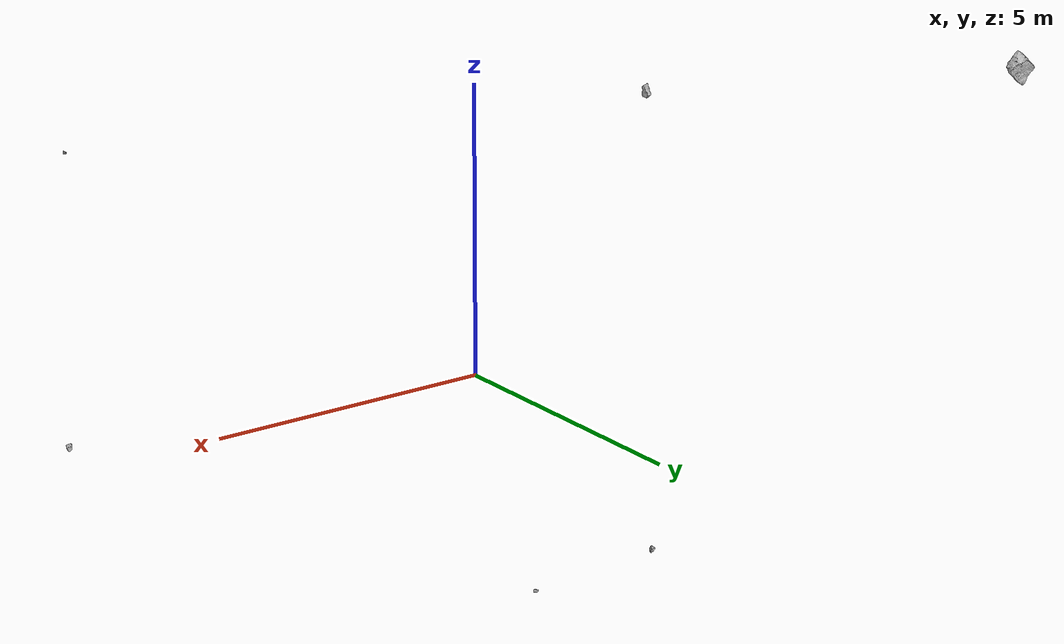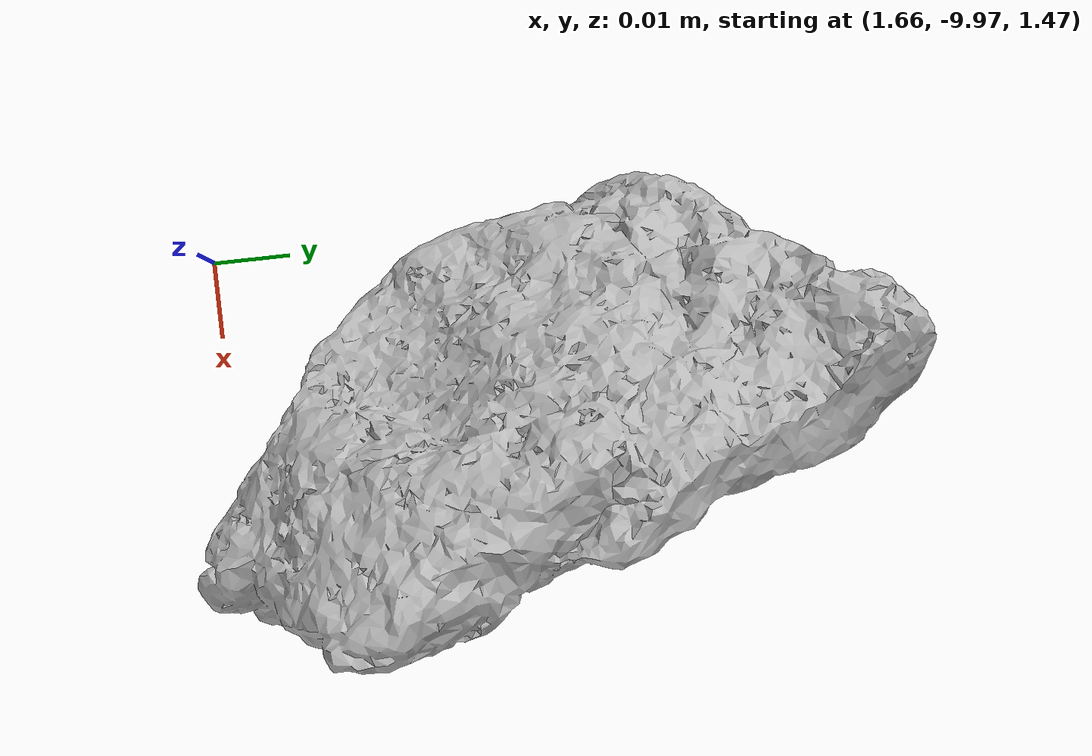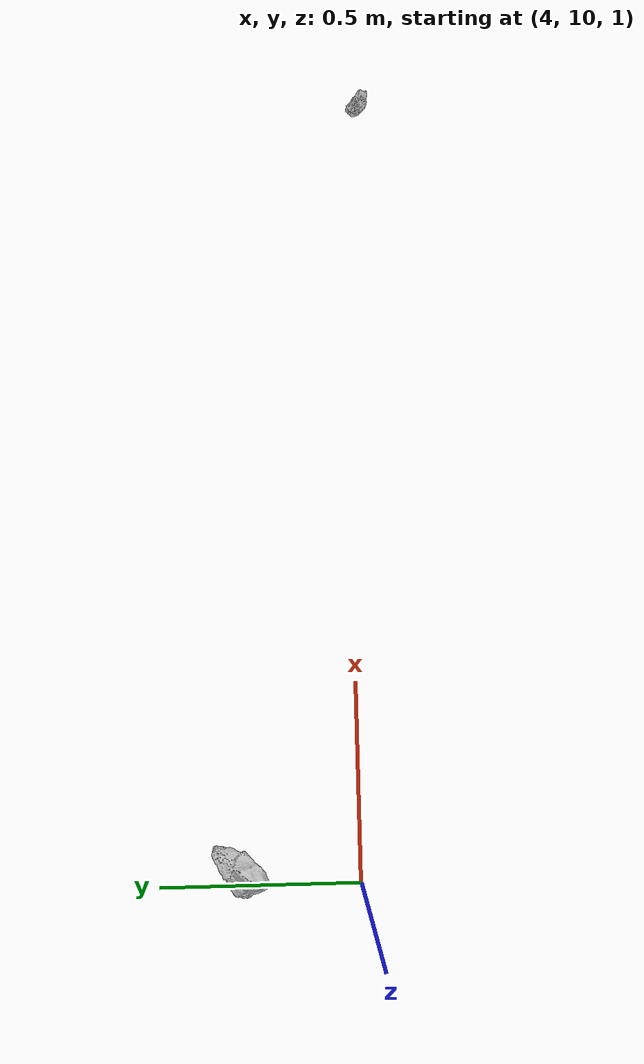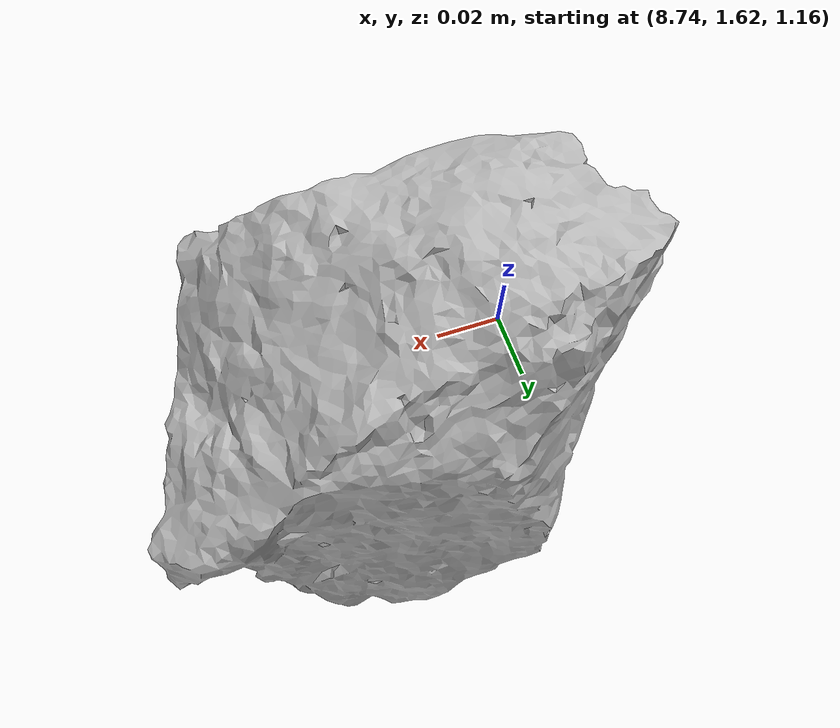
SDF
<sdf version="1.7">
 <world name="marsyard">
  <gravity>0 0 -9.81</gravity>
  <physics name="dart_physics" type="ignored">
   <max_step_size>0.003</max_step_size>
   <real_time_update_rate>333</real_time_update_rate>
   <real_time_factor>1.0</real_time_factor>
  </physics>
  <plugin filename="ignition-gazebo-physics-system" name="ignition::gazebo::systems::Physics"/>
  <plugin filename="ignition-gazebo-user-commands-system" name="ignition::gazebo::systems::UserCommands"/>
  <plugin filename="ignition-gazebo-scene-broadcaster-system" name="ignition::gazebo::systems::SceneBroadcaster"/>
  <plugin filename="ignition-gazebo-contact-system" name="ignition::gazebo::systems::Contact"/>
  <plugin filename="ignition-gazebo-sensors-system" name="ignition::gazebo::systems::Sensors">
   <render_engine>ogre2</render_engine>
  </plugin>
  <plugin filename="ignition-gazebo-imu-system" name="ignition::gazebo::systems::Imu"/>
  <plugin filename="ignition-gazebo-magnetometer-system" name="ignition::gazebo::systems::Magnetometer"/>
  <scene>
   <ambient>0.95 0.95 0.95 1</ambient>
   <background>0.70 0.70 0.70 1</background>
   <shadows>false</shadows>
  </scene>
  <light type="directional" name="sun">
   <cast_shadows>false</cast_shadows>
   <pose>0 0 30 0 0 0</pose>
   <diffuse>1 1 1 1</diffuse>
   <specular>0.15 0.15 0.15 1</specular>
   <direction>-0.35 0.1 -0.93</direction>
  </light>
  <model name="Rock_2">
   <static>true</static>
   <pose>1.6837 -9.9312 1.5080 0.0000 0.0000 1.8941</pose>
   <link name="link">
    <visual name="visual">
     <geometry><mesh><uri>package://rock_generator/rocks_ws/rock_5/meshes/rock_5.obj</uri></mesh></geometry>
    </visual>
   </link>
  </model>
  <model name="Rock_3">
   <static>true</static>
   <pose>-10.0103 -8.8852 0.7231 0.0000 0.0000 0.9096</pose>
   <link name="link">
    <visual name="visual">
     <geometry><mesh><uri>package://rock_generator/rocks_ws/rock_4/meshes/rock_4.obj</uri></mesh></geometry>
    </visual>
    <collision name="collision">
     <geometry><mesh><uri>package://rock_generator/rocks_ws/rock_4/meshes/rock_4.obj</uri></mesh></geometry>
    </collision>
   </link>
  </model>
  <model name="Rock_4">
   <static>true</static>
   <pose>4.1256 10.2969 1.2535 0.0000 0.0000 0.7761</pose>
   <link name="link">
    <visual name="visual">
     <geometry><mesh><uri>package://rock_generator/rocks_ws/rock_6/meshes/rock_6.obj</uri></mesh></geometry>
    </visual>
   </link>
  </model>
  <model name="Rock_5">
   <static>true</static>
   <pose>8.7861 1.6664 1.2309 0.0000 0.0000 3.0383</pose>
   <link name="link">
    <visual name="visual">
     <geometry><mesh><uri>package://rock_generator/rocks_ws/rock_9/meshes/rock_9.obj</uri></mesh></geometry>
    </visual>
   </link>
  </model>
  <model name="Rock_6">
   <static>true</static>
   <pose>-15.7226 -5.0433 1.0722 0.0000 0.0000 -0.2539</pose>
   <link name="link">
    <visual name="visual">
     <geometry><mesh><uri>package://rock_generator/rocks_ws/rock_1/meshes/rock_1.obj</uri></mesh></geometry>
    </visual>
    <collision name="collision">
     <geometry><mesh><uri>package://rock_generator/rocks_ws/rock_1/meshes/rock_1.obj</uri></mesh></geometry>
    </collision>
   </link>
  </model>
  <model name="Rock_8">
   <static>true</static>
   <pose>5.9700 9.9507 0.9278 0.0000 0.0000 2.4228</pose>
   <link name="link">
    <visual name="visual">
     <geometry><mesh><uri>package://rock_generator/rocks_ws/rock_5/meshes/rock_5.obj</uri></mesh></geometry>
    </visual>
   </link>
  </model>
 </world>
</sdf>
